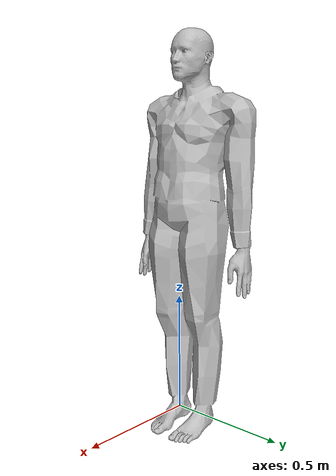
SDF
<?xml version="1.0" ?>
<sdf version="1.5">

<model name="actor_model">
  <pose>0 0 0.75 0 0 0</pose>
  <link name="link">
    <collision name="collision">
      <geometry>
        <box>
          <size>.5 .5 1.5</size>
        </box>
      </geometry>
    </collision>

    <visual name="visual">
      <geometry>
        <mesh><uri>model://pedsim_gazebo_plugin/models/model.dae</uri></mesh>
      </geometry>
    </visual>

  </link>
</model>

</sdf>
